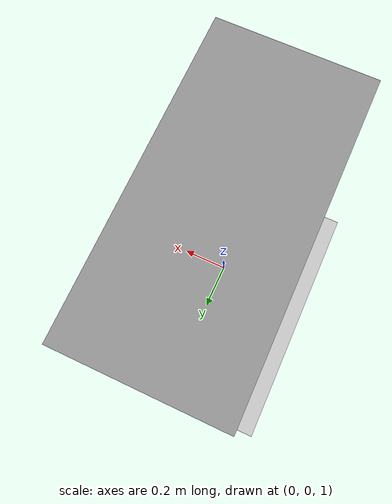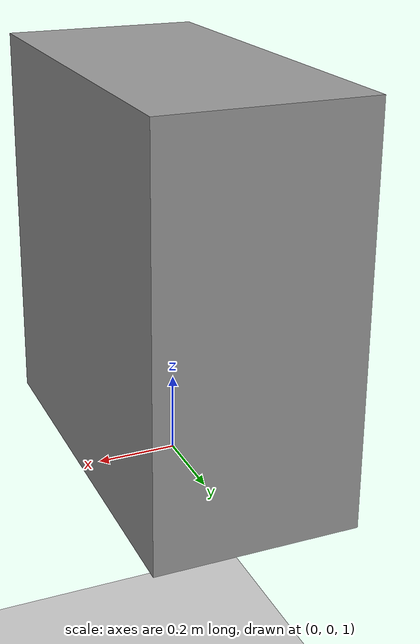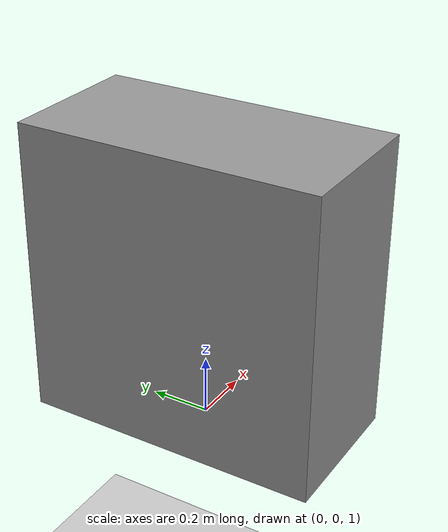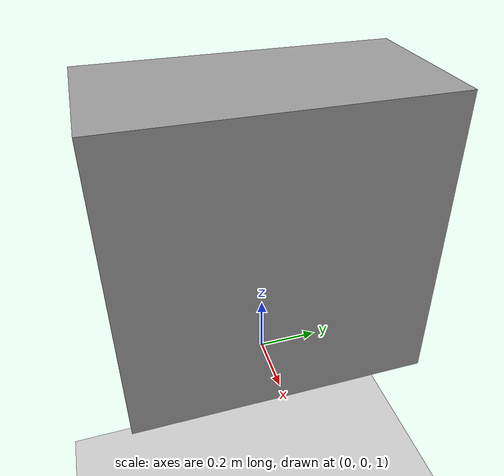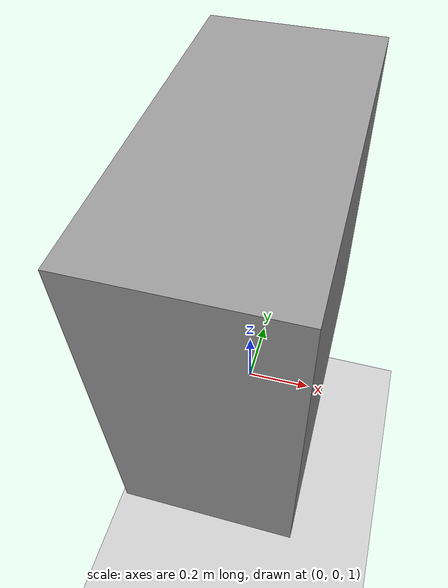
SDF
<?xml version="1.0"?>
<sdf version="1.5">
  <world name="rebot_world">
    <include>
      <uri>model://sun</uri>
    </include>
    <include>
      <uri>model://ground_plane</uri>
    </include>
    <include>
      <uri>model://stack</uri>
      <name>stack</name>
      <pose>0 0 1.5 0 0 0</pose>
    </include>
  </world>
</sdf>

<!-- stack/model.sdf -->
<sdf version='1.6'>
  <model name='stack'>
    <link name='link_0'>
      <pose frame=''>0 0 0 0 -0 0</pose>
      <inertial>
        <mass>100</mass>
        <inertia>
          <ixx>0.166667</ixx>
          <ixy>0</ixy>
          <ixz>0</ixz>
          <iyy>0.166667</iyy>
          <iyz>0</iyz>
          <izz>0.166667</izz>
        </inertia>
        <pose frame=''>0 0 0 0 -0 0</pose>
      </inertial>
      <gravity>1</gravity>
      <self_collide>0</self_collide>
      <kinematic>0</kinematic>
      <visual name='visual'>
        <pose frame=''>0 0 0 0 -0 0</pose>
        <geometry>
          <box>
            <size>0.5 1 1</size>
          </box>
        </geometry>
        <material>
          <lighting>1</lighting>
          <script>
            <uri>file://media/materials/scripts/gazebo.material</uri>
            <name>Gazebo/Grey</name>
          </script>
          <ambient>0.3 0.3 0.3 1</ambient>
          <diffuse>0.7 0.7 0.7 1</diffuse>
          <specular>0.01 0.01 0.01 1</specular>
          <emissive>0 0 0 1</emissive>
          <shader type='vertex'>
            <normal_map>__default__</normal_map>
          </shader>
        </material>
        <cast_shadows>1</cast_shadows>
        <transparency>0</transparency>
      </visual>
      <collision name='collision'>
        <laser_retro>0</laser_retro>
        <max_contacts>10</max_contacts>
        <pose frame=''>0 0 0 0 -0 0</pose>
        <geometry>
          <box>
            <size>0.5 1 1</size>
          </box>
        </geometry>
        <surface>
          <friction>
            <ode>
              <mu>1</mu>
              <mu2>1</mu2>
              <fdir1>0 0 0</fdir1>
              <slip1>0</slip1>
              <slip2>0</slip2>
            </ode>
            <torsional>
              <coefficient>1</coefficient>
              <patch_radius>0</patch_radius>
              <surface_radius>0</surface_radius>
              <use_patch_radius>1</use_patch_radius>
              <ode>
                <slip>0</slip>
              </ode>
            </torsional>
          </friction>
          <bounce>
            <restitution_coefficient>0</restitution_coefficient>
            <threshold>1e+06</threshold>
          </bounce>
          <contact>
            <collide_without_contact>0</collide_without_contact>
            <collide_without_contact_bitmask>1</collide_without_contact_bitmask>
            <collide_bitmask>1</collide_bitmask>
            <ode>
              <soft_cfm>0</soft_cfm>
              <soft_erp>0.2</soft_erp>
              <kp>1e+13</kp>
              <kd>1</kd>
              <max_vel>0.01</max_vel>
              <min_depth>0</min_depth>
            </ode>
            <bullet>
              <split_impulse>1</split_impulse>
              <split_impulse_penetration_threshold>-0.01</split_impulse_penetration_threshold>
              <soft_cfm>0</soft_cfm>
              <soft_erp>0.2</soft_erp>
              <kp>1e+13</kp>
              <kd>1</kd>
            </bullet>
          </contact>
        </surface>
      </collision>
    </link>
    <static>1</static>
    <allow_auto_disable>1</allow_auto_disable>
  </model>
</sdf>
